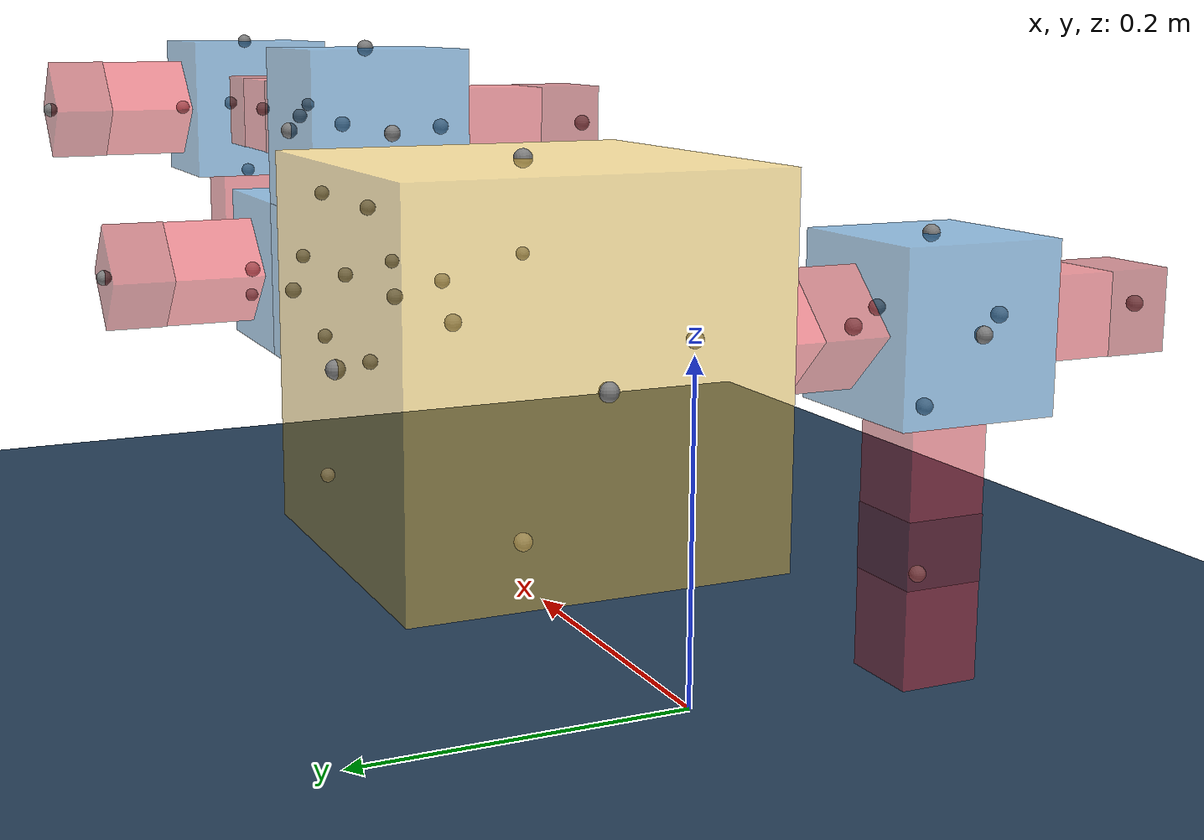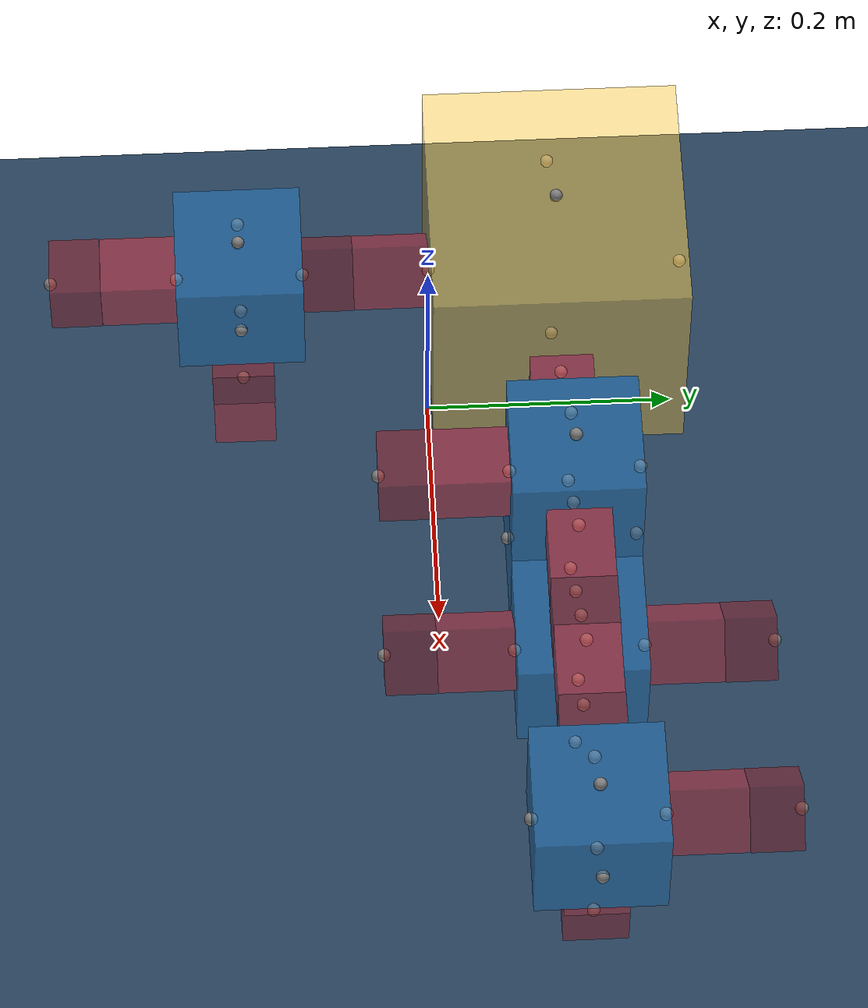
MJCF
<mujoco model="MuJoCo Model">
  <compiler angle="radian"/>

  <option integrator="implicitfast"/>

  <visual>
    <global offwidth="1280" offheight="960"/>
  </visual>

  <default>
    <default class="robot-main">
      <default class="robot-0-9-1-main"/>
      <default class="robot-0-29-2-main"/>
      <default class="robot-9-24-0-main"/>
      <default class="robot-29-26-0-main"/>
      <default class="robot-24-10-0-main"/>
      <default class="robot-24-7-3-main"/>
      <default class="robot-7-5-0-main"/>
      <default class="robot-26-20-4-main"/>
      <default class="robot-26-8-0-main"/>
      <default class="robot-20-4-2-main"/>
      <default class="robot-20-19-5-main"/>
      <default class="robot-8-16-5-main"/>
      <default class="robot-8-23-2-main"/>
      <default class="robot-8-1-3-main"/>
      <default class="robot-19-11-0-main"/>
      <default class="robot-11-14-0-main"/>
      <default class="robot-14-17-4-main"/>
      <default class="robot-14-21-3-main"/>
    </default>
  </default>

  <asset>
    <texture type="2d" colorspace="auto" name="grid" builtin="checker" rgb1="0.1 0.2 0.3" rgb2="0.2 0.3 0.4" width="600" height="600"/>
    <material name="grid" texture="grid" texuniform="true" texrepeat="3 3" reflectance="0.2"/>
  </asset>

  <worldbody>
    <geom name="floor" size="1 1 0.1" type="plane" material="grid"/>
    <site pos="0 0 0.208949"/>
    <light name="light" pos="0 0 1" dir="0 0 -1" castshadow="false"/>
    <body name="robot-world" pos="0 0 0.208949">
      <joint type="free"/>
      <body name="robot-core">
        <geom name="robot-core" size="0.1 0.1 0.1" pos="0 0.1 0" type="box" mass="1" rgba="0.992157 0.792157 0.25098 0.5"/>
        <site name="robot-core-front" pos="0 0.2 0"/>
        <site name="robot-core-back" pos="0 0 0" quat="0 0 0 1"/>
        <site name="robot-core-left" pos="-0.1 0.1 0" quat="0.707107 0 0 0.707107"/>
        <site name="robot-core-right" pos="0.1 0.1 0" quat="-0.707107 0 0 0.707107"/>
        <site name="robot-core-top" pos="0 0.1 0.1" quat="0.707107 0.707107 0 0"/>
        <site name="robot-core-bottom" pos="0 0.1 -0.1" quat="0 0 -0.707107 0.707107"/>
        <body name="robot-0-9-1-hinge" quat="0 -0.923785 0 0.382911">
          <body name="robot-0-9-1-stator" pos="0 0.03 0">
            <geom name="robot-0-9-1-stator" size="0.02475 0.0297 0.02475" type="box" mass="0.02" rgba="0.87451 0.160784 0.207843 0.5"/>
          </body>
          <body name="robot-0-9-1-rotor" pos="0 0.08 0">
            <joint name="robot-0-9-1-servo" pos="0 -0.02 0" axis="0 0 1"/>
            <geom name="robot-0-9-1-rotor" size="0.025 0.02 0.025" type="box" mass="0.04" rgba="0.627451 0.0941176 0.129412 0.5"/>
            <site name="robot-0-9-1-hinge-front" pos="0 0.02 0"/>
            <body name="robot-9-24-0-core" pos="0 0.02 0" quat="0.382911 0 0.923785 0">
              <geom name="robot-9-24-0-core" size="0.05 0.05 0.05" pos="0 0.05 0" type="box" mass="0.055" rgba="0.109804 0.466667 0.764706 0.5"/>
              <site name="robot-9-24-0-core-front" pos="0 0.1 0"/>
              <site name="robot-9-24-0-core-left" pos="-0.05 0.05 0" quat="0.707107 0 0 0.707107"/>
              <site name="robot-9-24-0-core-right" pos="0.05 0.05 0" quat="-0.707107 0 0 0.707107"/>
              <site name="robot-9-24-0-core-top" pos="0 0.05 0.05" quat="0.707107 0.707107 0 0"/>
              <site name="robot-9-24-0-core-bottom" pos="0 0.05 -0.05" quat="0 0 -0.707107 0.707107"/>
              <body name="robot-24-10-0-hinge" pos="0 0.1 0" quat="0.707107 0 0.707107 0">
                <body name="robot-24-10-0-stator" pos="0 0.03 0">
                  <geom name="robot-24-10-0-stator" size="0.02475 0.0297 0.02475" type="box" mass="0.02" rgba="0.87451 0.160784 0.207843 0.5"/>
                </body>
                <body name="robot-24-10-0-rotor" pos="0 0.08 0">
                  <joint name="robot-24-10-0-servo" pos="0 -0.02 0" axis="0 0 1"/>
                  <geom name="robot-24-10-0-rotor" size="0.025 0.02 0.025" type="box" mass="0.04" rgba="0.627451 0.0941176 0.129412 0.5"/>
                  <site name="robot-24-10-0-hinge-front" pos="0 0.02 0"/>
                </body>
              </body>
              <body name="robot-24-7-3-hinge" pos="-0.05 0.05 0" quat="0.5 -0.5 0.5 0.5">
                <body name="robot-24-7-3-stator" pos="0 0.03 0">
                  <geom name="robot-24-7-3-stator" size="0.02475 0.0297 0.02475" type="box" mass="0.02" rgba="0.87451 0.160784 0.207843 0.5"/>
                </body>
                <body name="robot-24-7-3-rotor" pos="0 0.08 0">
                  <joint name="robot-24-7-3-servo" pos="0 -0.02 0" axis="0 0 1"/>
                  <geom name="robot-24-7-3-rotor" size="0.025 0.02 0.025" type="box" mass="0.04" rgba="0.627451 0.0941176 0.129412 0.5"/>
                  <site name="robot-24-7-3-hinge-front" pos="0 0.02 0"/>
                  <body name="robot-7-5-0-hinge" pos="0 0.02 0" quat="-0.707107 0 0.707107 0">
                    <body name="robot-7-5-0-stator" pos="0 0.03 0">
                      <geom name="robot-7-5-0-stator" size="0.02475 0.0297 0.02475" type="box" mass="0.02" rgba="0.87451 0.160784 0.207843 0.5"/>
                    </body>
                    <body name="robot-7-5-0-rotor" pos="0 0.08 0">
                      <joint name="robot-7-5-0-servo" pos="0 -0.02 0" axis="0 0 1"/>
                      <geom name="robot-7-5-0-rotor" size="0.025 0.02 0.025" type="box" mass="0.04" rgba="0.627451 0.0941176 0.129412 0.5"/>
                      <site name="robot-7-5-0-hinge-front" pos="0 0.02 0"/>
                    </body>
                  </body>
                </body>
              </body>
            </body>
          </body>
        </body>
        <body name="robot-0-29-2-hinge" pos="0.1 0.1 0" quat="0.5 -0.5 -0.5 -0.5">
          <body name="robot-0-29-2-stator" pos="0 0.03 0">
            <geom name="robot-0-29-2-stator" size="0.02475 0.0297 0.02475" type="box" mass="0.02" rgba="0.87451 0.160784 0.207843 0.5"/>
          </body>
          <body name="robot-0-29-2-rotor" pos="0 0.08 0">
            <joint name="robot-0-29-2-servo" pos="0 -0.02 0" axis="0 0 1"/>
            <geom name="robot-0-29-2-rotor" size="0.025 0.02 0.025" type="box" mass="0.04" rgba="0.627451 0.0941176 0.129412 0.5"/>
            <site name="robot-0-29-2-hinge-front" pos="0 0.02 0"/>
            <body name="robot-29-26-0-core" pos="0 0.02 0" quat="0.707107 0 0.707107 0">
              <geom name="robot-29-26-0-core" size="0.05 0.05 0.05" pos="0 0.05 0" type="box" mass="0.055" rgba="0.109804 0.466667 0.764706 0.5"/>
              <site name="robot-29-26-0-core-front" pos="0 0.1 0"/>
              <site name="robot-29-26-0-core-left" pos="-0.05 0.05 0" quat="0.707107 0 0 0.707107"/>
              <site name="robot-29-26-0-core-right" pos="0.05 0.05 0" quat="-0.707107 0 0 0.707107"/>
              <site name="robot-29-26-0-core-top" pos="0 0.05 0.05" quat="0.707107 0.707107 0 0"/>
              <site name="robot-29-26-0-core-bottom" pos="0 0.05 -0.05" quat="0 0 -0.707107 0.707107"/>
              <body name="robot-26-20-4-core" pos="0 0.05 0.05" quat="0.707107 0.707107 0 0">
                <geom name="robot-26-20-4-core" size="0.05 0.05 0.05" pos="0 0.05 0" type="box" mass="0.055" rgba="0.109804 0.466667 0.764706 0.5"/>
                <site name="robot-26-20-4-core-front" pos="0 0.1 0"/>
                <site name="robot-26-20-4-core-left" pos="-0.05 0.05 0" quat="0.707107 0 0 0.707107"/>
                <site name="robot-26-20-4-core-right" pos="0.05 0.05 0" quat="-0.707107 0 0 0.707107"/>
                <site name="robot-26-20-4-core-top" pos="0 0.05 0.05" quat="0.707107 0.707107 0 0"/>
                <site name="robot-26-20-4-core-bottom" pos="0 0.05 -0.05" quat="0 0 -0.707107 0.707107"/>
                <body name="robot-20-4-2-hinge" pos="0.05 0.05 0" quat="0.5 -0.5 -0.5 -0.5">
                  <body name="robot-20-4-2-stator" pos="0 0.03 0">
                    <geom name="robot-20-4-2-stator" size="0.02475 0.0297 0.02475" type="box" mass="0.02" rgba="0.87451 0.160784 0.207843 0.5"/>
                  </body>
                  <body name="robot-20-4-2-rotor" pos="0 0.08 0">
                    <joint name="robot-20-4-2-servo" pos="0 -0.02 0" axis="0 0 1"/>
                    <geom name="robot-20-4-2-rotor" size="0.025 0.02 0.025" type="box" mass="0.04" rgba="0.627451 0.0941176 0.129412 0.5"/>
                    <site name="robot-20-4-2-hinge-front" pos="0 0.02 0"/>
                  </body>
                </body>
                <body name="robot-20-19-5-hinge" pos="0 0.05 -0.05" quat="0.5 -0.5 -0.5 0.5">
                  <body name="robot-20-19-5-stator" pos="0 0.03 0">
                    <geom name="robot-20-19-5-stator" size="0.02475 0.0297 0.02475" type="box" mass="0.02" rgba="0.87451 0.160784 0.207843 0.5"/>
                  </body>
                  <body name="robot-20-19-5-rotor" pos="0 0.08 0">
                    <joint name="robot-20-19-5-servo" pos="0 -0.02 0" axis="0 0 1"/>
                    <geom name="robot-20-19-5-rotor" size="0.025 0.02 0.025" type="box" mass="0.04" rgba="0.627451 0.0941176 0.129412 0.5"/>
                    <site name="robot-20-19-5-hinge-front" pos="0 0.02 0"/>
                    <body name="robot-19-11-0-hinge" pos="0 0.02 0" quat="-0.707107 0 0.707107 0">
                      <body name="robot-19-11-0-stator" pos="0 0.03 0">
                        <geom name="robot-19-11-0-stator" size="0.02475 0.0297 0.02475" type="box" mass="0.02" rgba="0.87451 0.160784 0.207843 0.5"/>
                      </body>
                      <body name="robot-19-11-0-rotor" pos="0 0.08 0">
                        <joint name="robot-19-11-0-servo" pos="0 -0.02 0" axis="0 0 1"/>
                        <geom name="robot-19-11-0-rotor" size="0.025 0.02 0.025" type="box" mass="0.04" rgba="0.627451 0.0941176 0.129412 0.5"/>
                        <site name="robot-19-11-0-hinge-front" pos="0 0.02 0"/>
                        <body name="robot-11-14-0-core" pos="0 0.02 0" quat="0.707107 0 0.707107 0">
                          <geom name="robot-11-14-0-core" size="0.05 0.05 0.05" pos="0 0.05 0" type="box" mass="0.055" rgba="0.109804 0.466667 0.764706 0.5"/>
                          <site name="robot-11-14-0-core-front" pos="0 0.1 0"/>
                          <site name="robot-11-14-0-core-left" pos="-0.05 0.05 0" quat="0.707107 0 0 0.707107"/>
                          <site name="robot-11-14-0-core-right" pos="0.05 0.05 0" quat="-0.707107 0 0 0.707107"/>
                          <site name="robot-11-14-0-core-top" pos="0 0.05 0.05" quat="0.707107 0.707107 0 0"/>
                          <site name="robot-11-14-0-core-bottom" pos="0 0.05 -0.05" quat="0 0 -0.707107 0.707107"/>
                          <body name="robot-14-17-4-hinge" pos="0 0.05 0.05" quat="0.270759 0.270759 0.653215 0.653215">
                            <body name="robot-14-17-4-stator" pos="0 0.03 0">
                              <geom name="robot-14-17-4-stator" size="0.02475 0.0297 0.02475" type="box" mass="0.02" rgba="0.87451 0.160784 0.207843 0.5"/>
                            </body>
                            <body name="robot-14-17-4-rotor" pos="0 0.08 0">
                              <joint name="robot-14-17-4-servo" pos="0 -0.02 0" axis="0 0 1"/>
                              <geom name="robot-14-17-4-rotor" size="0.025 0.02 0.025" type="box" mass="0.04" rgba="0.627451 0.0941176 0.129412 0.5"/>
                              <site name="robot-14-17-4-hinge-front" pos="0 0.02 0"/>
                            </body>
                          </body>
                          <body name="robot-14-21-3-hinge" pos="-0.05 0.05 0" quat="0.5 -0.5 0.5 0.5">
                            <body name="robot-14-21-3-stator" pos="0 0.03 0">
                              <geom name="robot-14-21-3-stator" size="0.02475 0.0297 0.02475" type="box" mass="0.02" rgba="0.87451 0.160784 0.207843 0.5"/>
                            </body>
                            <body name="robot-14-21-3-rotor" pos="0 0.08 0">
                              <joint name="robot-14-21-3-servo" pos="0 -0.02 0" axis="0 0 1"/>
                              <geom name="robot-14-21-3-rotor" size="0.025 0.02 0.025" type="box" mass="0.04" rgba="0.627451 0.0941176 0.129412 0.5"/>
                              <site name="robot-14-21-3-hinge-front" pos="0 0.02 0"/>
                            </body>
                          </body>
                        </body>
                      </body>
                    </body>
                  </body>
                </body>
              </body>
              <body name="robot-26-8-0-core" pos="0 0.1 0">
                <geom name="robot-26-8-0-core" size="0.05 0.05 0.05" pos="0 0.05 0" type="box" mass="0.055" rgba="0.109804 0.466667 0.764706 0.5"/>
                <site name="robot-26-8-0-core-front" pos="0 0.1 0"/>
                <site name="robot-26-8-0-core-left" pos="-0.05 0.05 0" quat="0.707107 0 0 0.707107"/>
                <site name="robot-26-8-0-core-right" pos="0.05 0.05 0" quat="-0.707107 0 0 0.707107"/>
                <site name="robot-26-8-0-core-top" pos="0 0.05 0.05" quat="0.707107 0.707107 0 0"/>
                <site name="robot-26-8-0-core-bottom" pos="0 0.05 -0.05" quat="0 0 -0.707107 0.707107"/>
                <body name="robot-8-16-5-hinge" pos="0 0.05 -0.05" quat="0.5 -0.5 0.5 -0.5">
                  <body name="robot-8-16-5-stator" pos="0 0.03 0">
                    <geom name="robot-8-16-5-stator" size="0.02475 0.0297 0.02475" type="box" mass="0.02" rgba="0.87451 0.160784 0.207843 0.5"/>
                  </body>
                  <body name="robot-8-16-5-rotor" pos="0 0.08 0">
                    <joint name="robot-8-16-5-servo" pos="0 -0.02 0" axis="0 0 1"/>
                    <geom name="robot-8-16-5-rotor" size="0.025 0.02 0.025" type="box" mass="0.04" rgba="0.627451 0.0941176 0.129412 0.5"/>
                    <site name="robot-8-16-5-hinge-front" pos="0 0.02 0"/>
                  </body>
                </body>
                <body name="robot-8-23-2-hinge" pos="0.05 0.05 0" quat="-0.653215 -0.270759 -0.270759 0.653215">
                  <body name="robot-8-23-2-stator" pos="0 0.03 0">
                    <geom name="robot-8-23-2-stator" size="0.02475 0.0297 0.02475" type="box" mass="0.02" rgba="0.87451 0.160784 0.207843 0.5"/>
                  </body>
                  <body name="robot-8-23-2-rotor" pos="0 0.08 0">
                    <joint name="robot-8-23-2-servo" pos="0 -0.02 0" axis="0 0 1"/>
                    <geom name="robot-8-23-2-rotor" size="0.025 0.02 0.025" type="box" mass="0.04" rgba="0.627451 0.0941176 0.129412 0.5"/>
                    <site name="robot-8-23-2-hinge-front" pos="0 0.02 0"/>
                  </body>
                </body>
                <body name="robot-8-1-3-hinge" pos="-0.05 0.05 0" quat="-0.270759 -0.653215 0.653215 -0.270759">
                  <body name="robot-8-1-3-stator" pos="0 0.03 0">
                    <geom name="robot-8-1-3-stator" size="0.02475 0.0297 0.02475" type="box" mass="0.02" rgba="0.87451 0.160784 0.207843 0.5"/>
                  </body>
                  <body name="robot-8-1-3-rotor" pos="0 0.08 0">
                    <joint name="robot-8-1-3-servo" pos="0 -0.02 0" axis="0 0 1"/>
                    <geom name="robot-8-1-3-rotor" size="0.025 0.02 0.025" type="box" mass="0.04" rgba="0.627451 0.0941176 0.129412 0.5"/>
                    <site name="robot-8-1-3-hinge-front" pos="0 0.02 0"/>
                  </body>
                </body>
              </body>
            </body>
          </body>
        </body>
      </body>
    </body>
  </worldbody>

  <contact>
    <exclude body1="robot-0-9-1-stator" body2="robot-0-9-1-rotor"/>
    <exclude body1="robot-24-10-0-stator" body2="robot-24-10-0-rotor"/>
    <exclude body1="robot-24-7-3-stator" body2="robot-24-7-3-rotor"/>
    <exclude body1="robot-7-5-0-stator" body2="robot-7-5-0-rotor"/>
    <exclude body1="robot-0-29-2-stator" body2="robot-0-29-2-rotor"/>
    <exclude body1="robot-20-4-2-stator" body2="robot-20-4-2-rotor"/>
    <exclude body1="robot-20-19-5-stator" body2="robot-20-19-5-rotor"/>
    <exclude body1="robot-19-11-0-stator" body2="robot-19-11-0-rotor"/>
    <exclude body1="robot-14-17-4-stator" body2="robot-14-17-4-rotor"/>
    <exclude body1="robot-14-21-3-stator" body2="robot-14-21-3-rotor"/>
    <exclude body1="robot-8-16-5-stator" body2="robot-8-16-5-rotor"/>
    <exclude body1="robot-8-23-2-stator" body2="robot-8-23-2-rotor"/>
    <exclude body1="robot-8-1-3-stator" body2="robot-8-1-3-rotor"/>
  </contact>

  <actuator>
    <general name="robot-0-9-1-servo" joint="robot-0-9-1-servo" ctrlrange="-3.14159 -3.14159" dynprm="0 0 0 0 0 0 0 0 0 0" biastype="affine" biasprm="0 -1 -1"/>
    <general name="robot-0-29-2-servo" joint="robot-0-29-2-servo" ctrlrange="-3.14159 -3.14159" dynprm="0 0 0 0 0 0 0 0 0 0" biastype="affine" biasprm="0 -1 -1"/>
    <general name="robot-24-10-0-servo" joint="robot-24-10-0-servo" ctrlrange="-3.14159 -3.14159" dynprm="0 0 0 0 0 0 0 0 0 0" biastype="affine" biasprm="0 -1 -1"/>
    <general name="robot-24-7-3-servo" joint="robot-24-7-3-servo" ctrlrange="-3.14159 -3.14159" dynprm="0 0 0 0 0 0 0 0 0 0" biastype="affine" biasprm="0 -1 -1"/>
    <general name="robot-7-5-0-servo" joint="robot-7-5-0-servo" ctrlrange="-3.14159 -3.14159" dynprm="0 0 0 0 0 0 0 0 0 0" biastype="affine" biasprm="0 -1 -1"/>
    <general name="robot-20-4-2-servo" joint="robot-20-4-2-servo" ctrlrange="-3.14159 -3.14159" dynprm="0 0 0 0 0 0 0 0 0 0" biastype="affine" biasprm="0 -1 -1"/>
    <general name="robot-20-19-5-servo" joint="robot-20-19-5-servo" ctrlrange="-3.14159 -3.14159" dynprm="0 0 0 0 0 0 0 0 0 0" biastype="affine" biasprm="0 -1 -1"/>
    <general name="robot-8-16-5-servo" joint="robot-8-16-5-servo" ctrlrange="-3.14159 -3.14159" dynprm="0 0 0 0 0 0 0 0 0 0" biastype="affine" biasprm="0 -1 -1"/>
    <general name="robot-8-23-2-servo" joint="robot-8-23-2-servo" ctrlrange="-3.14159 -3.14159" dynprm="0 0 0 0 0 0 0 0 0 0" biastype="affine" biasprm="0 -1 -1"/>
    <general name="robot-8-1-3-servo" joint="robot-8-1-3-servo" ctrlrange="-3.14159 -3.14159" dynprm="0 0 0 0 0 0 0 0 0 0" biastype="affine" biasprm="0 -1 -1"/>
    <general name="robot-19-11-0-servo" joint="robot-19-11-0-servo" ctrlrange="-3.14159 -3.14159" dynprm="0 0 0 0 0 0 0 0 0 0" biastype="affine" biasprm="0 -1 -1"/>
    <general name="robot-14-17-4-servo" joint="robot-14-17-4-servo" ctrlrange="-3.14159 -3.14159" dynprm="0 0 0 0 0 0 0 0 0 0" biastype="affine" biasprm="0 -1 -1"/>
    <general name="robot-14-21-3-servo" joint="robot-14-21-3-servo" ctrlrange="-3.14159 -3.14159" dynprm="0 0 0 0 0 0 0 0 0 0" biastype="affine" biasprm="0 -1 -1"/>
  </actuator>
</mujoco>
